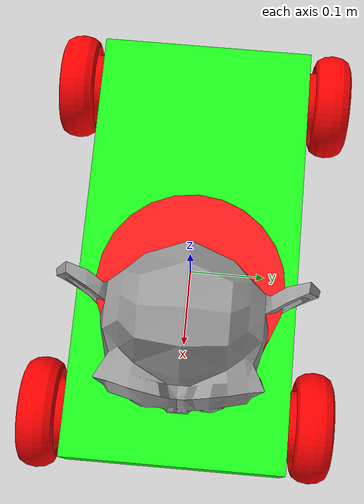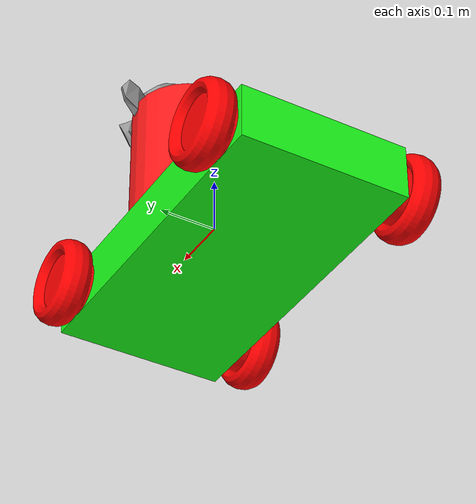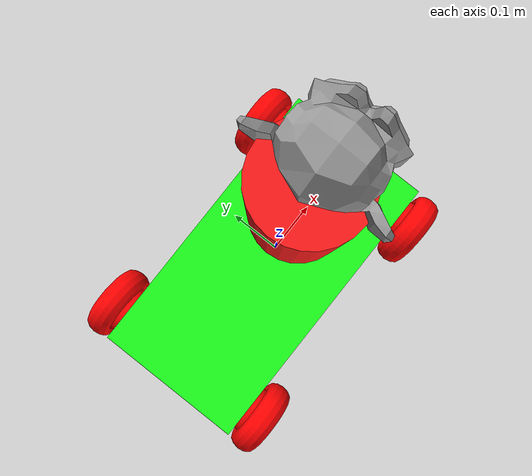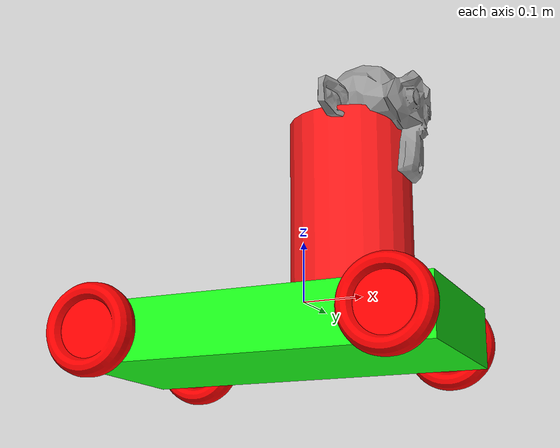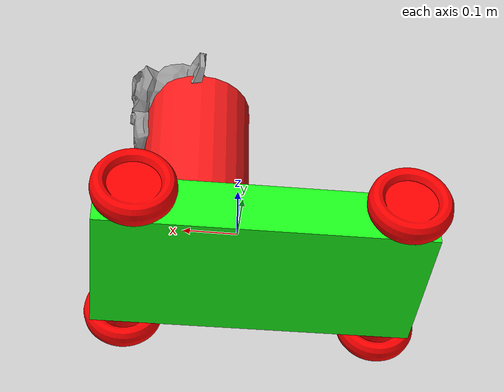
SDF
<?xml version='1.0'?>
<sdf version='1.7'>
  <model name='macaco_robot'>
    <link name='link_3_clone'>
      <inertial>
        <mass>1</mass>
        <inertia>
          <ixx>0.166667</ixx>
          <ixy>0</ixy>
          <ixz>0</ixz>
          <iyy>0.166667</iyy>
          <iyz>0</iyz>
          <izz>0.166667</izz>
        </inertia>
        <pose>0 0 0 0 -0 0</pose>
      </inertial>
      <pose>-0.28315 -0.186738 -0.05589 0 -0 0</pose>
      <gravity>1</gravity>
      <self_collide>0</self_collide>
      <kinematic>0</kinematic>
      <enable_wind>0</enable_wind>
      <visual name='visual'>
        <pose>0 0 0 0 -0 0</pose>
        <geometry>
          <mesh>
            <uri>/home/cristian/Documents/exemplo_gazebo_blender/weels4.dae</uri>
            <scale>1 1 1</scale>
          </mesh>
        </geometry>

        <material>
          <lighting>1</lighting>
          <script>
            <uri>file://media/materials/scripts/gazebo.material</uri>
            <name>Gazebo/Grey</name>
          </script>
          <shader type='pixel'>
            <normal_map>__default__</normal_map>
          </shader>
          <emissive>0 0 0 1</emissive>
          <ambient>1 0 0 0</ambient>
          <diffuse>0.7 0.7 0.7 1</diffuse>
          <specular>0.01 0.01 0.01 1</specular>
        </material>

        <transparency>0</transparency>
        <cast_shadows>1</cast_shadows>
      </visual>

      <collision name='collision'>
        <laser_retro>0</laser_retro>
        <max_contacts>10</max_contacts>
        <pose>0 0 0 0 -0 0</pose>
        <geometry>
          <mesh>
            <uri>/home/cristian/Documents/exemplo_gazebo_blender/weels4.dae</uri>
            <scale>1 1 1</scale>
          </mesh>
        </geometry>
        <surface>
          <friction>
            <ode>
              <mu>1</mu>
              <mu2>1</mu2>
              <fdir1>0 0 0</fdir1>
              <slip1>0</slip1>
              <slip2>0</slip2>
            </ode>
            <torsional>
              <coefficient>1</coefficient>
              <patch_radius>0</patch_radius>
              <surface_radius>0</surface_radius>
              <use_patch_radius>1</use_patch_radius>
              <ode>
                <slip>0</slip>
              </ode>
            </torsional>
          </friction>
          <bounce>
            <restitution_coefficient>0</restitution_coefficient>
            <threshold>1e+06</threshold>
          </bounce>
          <contact>
            <collide_without_contact>0</collide_without_contact>
            <collide_without_contact_bitmask>1</collide_without_contact_bitmask>
            <collide_bitmask>1</collide_bitmask>
            <ode>
              <soft_cfm>0</soft_cfm>
              <soft_erp>0.2</soft_erp>
              <kp>1e+13</kp>
              <kd>1</kd>
              <max_vel>0.01</max_vel>
              <min_depth>0</min_depth>
            </ode>
            <bullet>
              <split_impulse>1</split_impulse>
              <split_impulse_penetration_threshold>-0.01</split_impulse_penetration_threshold>
              <soft_cfm>0</soft_cfm>
              <soft_erp>0.2</soft_erp>
              <kp>1e+13</kp>
              <kd>1</kd>
            </bullet>
          </contact>
        </surface>
      </collision>
    </link>
    <link name='link_3_clone_clone'>
      <inertial>
        <mass>1</mass>
        <inertia>
          <ixx>0.166667</ixx>
          <ixy>0</ixy>
          <ixz>0</ixz>
          <iyy>0.166667</iyy>
          <iyz>0</iyz>
          <izz>0.166667</izz>
        </inertia>
        <pose>0 0 0 0 -0 0</pose>
      </inertial>
      <pose>0.20042 -0.186738 -0.05589 0 -0 0</pose>
      <gravity>1</gravity>
      <self_collide>0</self_collide>
      <kinematic>0</kinematic>
      <enable_wind>0</enable_wind>
      <visual name='visual'>
        <pose>0 0 0 0 -0 0</pose>
        <geometry>
          <mesh>
            <uri>/home/cristian/Documents/exemplo_gazebo_blender/weels4.dae</uri>
            <scale>1 1 1</scale>
          </mesh>
        </geometry>
        <material>
          <lighting>1</lighting>
          <script>
            <uri>file://media/materials/scripts/gazebo.material</uri>
            <name>Gazebo/Grey</name>
          </script>
          <shader type='pixel'>
            <normal_map>__default__</normal_map>
          </shader>
          <emissive>0 0 0 1</emissive>
          <ambient>1 0 0 0</ambient>
          <diffuse>0.7 0.7 0.7 1</diffuse>
          <specular>0.01 0.01 0.01 1</specular>
        </material>
        <transparency>0</transparency>
        <cast_shadows>1</cast_shadows>
      </visual>
      <collision name='collision'>
        <laser_retro>0</laser_retro>
        <max_contacts>10</max_contacts>
        <pose>0 0 0 0 -0 0</pose>
        <geometry>
          <mesh>
            <uri>/home/cristian/Documents/exemplo_gazebo_blender/weels4.dae</uri>
            <scale>1 1 1</scale>
          </mesh>
        </geometry>
        <surface>
          <friction>
            <ode>
              <mu>1</mu>
              <mu2>1</mu2>
              <fdir1>0 0 0</fdir1>
              <slip1>0</slip1>
              <slip2>0</slip2>
            </ode>
            <torsional>
              <coefficient>1</coefficient>
              <patch_radius>0</patch_radius>
              <surface_radius>0</surface_radius>
              <use_patch_radius>1</use_patch_radius>
              <ode>
                <slip>0</slip>
              </ode>
            </torsional>
          </friction>
          <bounce>
            <restitution_coefficient>0</restitution_coefficient>
            <threshold>1e+06</threshold>
          </bounce>
          <contact>
            <collide_without_contact>0</collide_without_contact>
            <collide_without_contact_bitmask>1</collide_without_contact_bitmask>
            <collide_bitmask>1</collide_bitmask>
            <ode>
              <soft_cfm>0</soft_cfm>
              <soft_erp>0.2</soft_erp>
              <kp>1e+13</kp>
              <kd>1</kd>
              <max_vel>0.01</max_vel>
              <min_depth>0</min_depth>
            </ode>
            <bullet>
              <split_impulse>1</split_impulse>
              <split_impulse_penetration_threshold>-0.01</split_impulse_penetration_threshold>
              <soft_cfm>0</soft_cfm>
              <soft_erp>0.2</soft_erp>
              <kp>1e+13</kp>
              <kd>1</kd>
            </bullet>
          </contact>
        </surface>
      </collision>
    </link>
    <link name='link_3_clone_clone_0'>
      <inertial>
        <mass>1</mass>
        <inertia>
          <ixx>0.166667</ixx>
          <ixy>0</ixy>
          <ixz>0</ixz>
          <iyy>0.166667</iyy>
          <iyz>0</iyz>
          <izz>0.166667</izz>
        </inertia>
        <pose>0 0 0 0 -0 0</pose>
      </inertial>
      <pose>-0.281149 0.181791 -0.05589 0 -0 0</pose>
      <gravity>1</gravity>
      <self_collide>0</self_collide>
      <kinematic>0</kinematic>
      <enable_wind>0</enable_wind>
      <visual name='visual'>
        <pose>0 0 0 0 -0 3.1415</pose>
        <geometry>
          <mesh>
            <uri>/home/cristian/Documents/exemplo_gazebo_blender/weels4.dae</uri>
            <scale>1 1 1</scale>
          </mesh>
        </geometry>
        <material>
          <lighting>1</lighting>
          <script>
            <uri>file://media/materials/scripts/gazebo.material</uri>
            <name>Gazebo/Grey</name>
          </script>
          <shader type='pixel'>
            <normal_map>__default__</normal_map>
          </shader>
          <emissive>0 0 0 1</emissive>
          <ambient>1 0 0 1</ambient>
          <diffuse>0.7 0.7 0.7 1</diffuse>
          <specular>0.01 0.01 0.01 1</specular>
        </material>
        <transparency>0</transparency>
        <cast_shadows>1</cast_shadows>
      </visual>
      <collision name='collision'>
        <laser_retro>0</laser_retro>
        <max_contacts>10</max_contacts>
        <pose>0 0 0 0 -0 3.1415</pose>
        <geometry>
          <mesh>
            <uri>/home/cristian/Documents/exemplo_gazebo_blender/weels4.dae</uri>
            <scale>1 1 1</scale>
          </mesh>
        </geometry>
        <surface>
          <friction>
            <ode>
              <mu>1</mu>
              <mu2>1</mu2>
              <fdir1>0 0 0</fdir1>
              <slip1>0</slip1>
              <slip2>0</slip2>
            </ode>
            <torsional>
              <coefficient>1</coefficient>
              <patch_radius>0</patch_radius>
              <surface_radius>0</surface_radius>
              <use_patch_radius>1</use_patch_radius>
              <ode>
                <slip>0</slip>
              </ode>
            </torsional>
          </friction>
          <bounce>
            <restitution_coefficient>0</restitution_coefficient>
            <threshold>1e+06</threshold>
          </bounce>
          <contact>
            <collide_without_contact>0</collide_without_contact>
            <collide_without_contact_bitmask>1</collide_without_contact_bitmask>
            <collide_bitmask>1</collide_bitmask>
            <ode>
              <soft_cfm>0</soft_cfm>
              <soft_erp>0.2</soft_erp>
              <kp>1e+13</kp>
              <kd>1</kd>
              <max_vel>0.01</max_vel>
              <min_depth>0</min_depth>
            </ode>
            <bullet>
              <split_impulse>1</split_impulse>
              <split_impulse_penetration_threshold>-0.01</split_impulse_penetration_threshold>
              <soft_cfm>0</soft_cfm>
              <soft_erp>0.2</soft_erp>
              <kp>1e+13</kp>
              <kd>1</kd>
            </bullet>
          </contact>
        </surface>
      </collision>
    </link>
    <link name='link_3_clone_clone_clone'>
      <inertial>
        <mass>1</mass>
        <inertia>
          <ixx>0.166667</ixx>
          <ixy>0</ixy>
          <ixz>0</ixz>
          <iyy>0.166667</iyy>
          <iyz>0</iyz>
          <izz>0.166667</izz>
        </inertia>
        <pose>0 0 0 0 -0 0</pose>
      </inertial>
      <pose>0.19165 0.181791 -0.05589 0 -0 0</pose>
      <gravity>1</gravity>
      <self_collide>0</self_collide>
      <kinematic>0</kinematic>
      <enable_wind>0</enable_wind>
      <visual name='visual'>
        <pose>0 0 0 0 -0 3.1415</pose>
        <geometry>
          <mesh>
            <uri>/home/cristian/Documents/exemplo_gazebo_blender/weels4.dae</uri>
            <scale>1 1 1</scale>
          </mesh>
        </geometry>
        <material>
          <lighting>1</lighting>
          <script>
            <uri>file://media/materials/scripts/gazebo.material</uri>
            <name>Gazebo/Grey</name>
          </script>
          <shader type='pixel'>
            <normal_map>__default__</normal_map>
          </shader>
          <emissive>0 0 0 1</emissive>
          <ambient>1 0 0 1</ambient>
          <diffuse>0.7 0.7 0.7 1</diffuse>
          <specular>0.01 0.01 0.01 1</specular>
        </material>
        <transparency>0</transparency>
        <cast_shadows>1</cast_shadows>
      </visual>
      <collision name='collision'>
        <laser_retro>0</laser_retro>
        <max_contacts>10</max_contacts>
        <pose>0 0 0 0 -0 3.1415</pose>
        <geometry>
          <mesh>
            <uri>/home/cristian/Documents/exemplo_gazebo_blender/weels4.dae</uri>
            <scale>1 1 1</scale>
          </mesh>
        </geometry>
        <surface>
          <friction>
            <ode>
              <mu>1</mu>
              <mu2>1</mu2>
              <fdir1>0 0 0</fdir1>
              <slip1>0</slip1>
              <slip2>0</slip2>
            </ode>
            <torsional>
              <coefficient>1</coefficient>
              <patch_radius>0</patch_radius>
              <surface_radius>0</surface_radius>
              <use_patch_radius>1</use_patch_radius>
              <ode>
                <slip>0</slip>
              </ode>
            </torsional>
          </friction>
          <bounce>
            <restitution_coefficient>0</restitution_coefficient>
            <threshold>1e+06</threshold>
          </bounce>
          <contact>
            <collide_without_contact>0</collide_without_contact>
            <collide_without_contact_bitmask>1</collide_without_contact_bitmask>
            <collide_bitmask>1</collide_bitmask>
            <ode>
              <soft_cfm>0</soft_cfm>
              <soft_erp>0.2</soft_erp>
              <kp>1e+13</kp>
              <kd>1</kd>
              <max_vel>0.01</max_vel>
              <min_depth>0</min_depth>
            </ode>
            <bullet>
              <split_impulse>1</split_impulse>
              <split_impulse_penetration_threshold>-0.01</split_impulse_penetration_threshold>
              <soft_cfm>0</soft_cfm>
              <soft_erp>0.2</soft_erp>
              <kp>1e+13</kp>
              <kd>1</kd>
            </bullet>
          </contact>
        </surface>
      </collision>
    </link>
    <link name='link_5'>
      <inertial>
        <mass>1</mass>
        <inertia>
          <ixx>0.166667</ixx>
          <ixy>0</ixy>
          <ixz>0</ixz>
          <iyy>0.166667</iyy>
          <iyz>0</iyz>
          <izz>0.166667</izz>
        </inertia>
        <pose>0 0 0 0 -0 0</pose>
      </inertial>
      <pose>-0.03922 -0.002477 -0.103963 0 -0 0</pose>
      <gravity>1</gravity>
      <self_collide>0</self_collide>
      <kinematic>0</kinematic>
      <enable_wind>0</enable_wind>
      <visual name='visual'>
        <pose>0 0 0.05 0 -0 0</pose>
        <geometry>
          <box>
            <size>0.6 0.3 0.1</size>
          </box>
        </geometry>
        <material>
          <lighting>1</lighting>
          <script>
            <uri>file://media/materials/scripts/gazebo.material</uri>
            <name>Gazebo/Grey</name>
          </script>
          <shader type='pixel'>
            <normal_map>__default__</normal_map>
          </shader>
          <ambient>0.1 1 0.1 1</ambient>
          <diffuse>0.7 0.7 0.7 1</diffuse>
          <specular>0.01 0.01 0.01 1</specular>
          <emissive>0 0 0 1</emissive>
        </material>
        <transparency>0</transparency>
        <cast_shadows>1</cast_shadows>
      </visual>
      <collision name='collision'>
        <laser_retro>0</laser_retro>
        <max_contacts>10</max_contacts>
        <pose>0 0 0.05 0 -0 0</pose>
        <geometry>
          <box>
            <size>0.6 0.3 0.1</size>
          </box>
        </geometry>
        <surface>
          <friction>
            <ode>
              <mu>1</mu>
              <mu2>1</mu2>
              <fdir1>0 0 0</fdir1>
              <slip1>0</slip1>
              <slip2>0</slip2>
            </ode>
            <torsional>
              <coefficient>1</coefficient>
              <patch_radius>0</patch_radius>
              <surface_radius>0</surface_radius>
              <use_patch_radius>1</use_patch_radius>
              <ode>
                <slip>0</slip>
              </ode>
            </torsional>
          </friction>
          <bounce>
            <restitution_coefficient>0</restitution_coefficient>
            <threshold>1e+06</threshold>
          </bounce>
          <contact>
            <collide_without_contact>0</collide_without_contact>
            <collide_without_contact_bitmask>1</collide_without_contact_bitmask>
            <collide_bitmask>1</collide_bitmask>
            <ode>
              <soft_cfm>0</soft_cfm>
              <soft_erp>0.2</soft_erp>
              <kp>1e+13</kp>
              <kd>1</kd>
              <max_vel>0.01</max_vel>
              <min_depth>0</min_depth>
            </ode>
            <bullet>
              <split_impulse>1</split_impulse>
              <split_impulse_penetration_threshold>-0.01</split_impulse_penetration_threshold>
              <soft_cfm>0</soft_cfm>
              <soft_erp>0.2</soft_erp>
              <kp>1e+13</kp>
              <kd>1</kd>
            </bullet>
          </contact>
        </surface>
      </collision>
    </link>
    <link name='link_6'>
      <inertial>
        <mass>1</mass>
        <inertia>
          <ixx>0.145833</ixx>
          <ixy>0</ixy>
          <ixz>0</ixz>
          <iyy>0.145833</iyy>
          <iyz>0</iyz>
          <izz>0.125</izz>
        </inertia>
        <pose>0 0 0 0 -0 0</pose>
      </inertial>
      <pose>0.08126 0.007551 0.043037 0 -0 0</pose>
      <gravity>1</gravity>
      <self_collide>0</self_collide>
      <kinematic>0</kinematic>
      <enable_wind>0</enable_wind>
      <visual name='visual'>
        <pose>0 0 0.1 0 -0 0</pose>
        <geometry>
          <cylinder>
            <radius>0.1</radius>
            <length>0.3</length>
          </cylinder>
        </geometry>
        <material>
          <lighting>1</lighting>
          <script>
            <uri>file://media/materials/scripts/gazebo.material</uri>
            <name>Gazebo/Grey</name>
          </script>
          <shader type='pixel'>
            <normal_map>__default__</normal_map>
          </shader>
          <ambient>1 0.1 0.1 1</ambient>
          <diffuse>0.7 0.7 0.7 1</diffuse>
          <specular>0.01 0.01 0.01 1</specular>
          <emissive>0 0 0 1</emissive>
        </material>
        <transparency>0</transparency>
        <cast_shadows>1</cast_shadows>
      </visual>
      <collision name='collision'>
        <laser_retro>0</laser_retro>
        <max_contacts>10</max_contacts>
        <pose>0 0 0.1 0 -0 0</pose>
        <geometry>
          <cylinder>
            <radius>0.1</radius>
            <length>0.3</length>
          </cylinder>
        </geometry>
        <surface>
          <friction>
            <ode>
              <mu>1</mu>
              <mu2>1</mu2>
              <fdir1>0 0 0</fdir1>
              <slip1>0</slip1>
              <slip2>0</slip2>
            </ode>
            <torsional>
              <coefficient>1</coefficient>
              <patch_radius>0</patch_radius>
              <surface_radius>0</surface_radius>
              <use_patch_radius>1</use_patch_radius>
              <ode>
                <slip>0</slip>
              </ode>
            </torsional>
          </friction>
          <bounce>
            <restitution_coefficient>0</restitution_coefficient>
            <threshold>1e+06</threshold>
          </bounce>
          <contact>
            <collide_without_contact>0</collide_without_contact>
            <collide_without_contact_bitmask>1</collide_without_contact_bitmask>
            <collide_bitmask>1</collide_bitmask>
            <ode>
              <soft_cfm>0</soft_cfm>
              <soft_erp>0.2</soft_erp>
              <kp>1e+13</kp>
              <kd>1</kd>
              <max_vel>0.01</max_vel>
              <min_depth>0</min_depth>
            </ode>
            <bullet>
              <split_impulse>1</split_impulse>
              <split_impulse_penetration_threshold>-0.01</split_impulse_penetration_threshold>
              <soft_cfm>0</soft_cfm>
              <soft_erp>0.2</soft_erp>
              <kp>1e+13</kp>
              <kd>1</kd>
            </bullet>
          </contact>
        </surface>
      </collision>
    </link>
    <link name='link_7'>
      <inertial>
        <mass>1</mass>
        <inertia>
          <ixx>0.166667</ixx>
          <ixy>0</ixy>
          <ixz>0</ixz>
          <iyy>0.166667</iyy>
          <iyz>0</iyz>
          <izz>0.166667</izz>
        </inertia>
        <pose>0 0 0 0 -0 0</pose>
      </inertial>
      <pose>0.13019 0.004819 0.284485 0 -0 0</pose>
      <gravity>1</gravity>
      <self_collide>0</self_collide>
      <kinematic>0</kinematic>
      <enable_wind>0</enable_wind>
      <visual name='visual'>
        <pose>0 0 0 0 -0 1.5707</pose>
        <geometry>
          <mesh>
            <uri>/home/cristian/Documents/exemplo_gazebo_blender/monkey.dae</uri>
            <scale>1 1 1</scale>
          </mesh>
        </geometry>
        <material>
          <lighting>1</lighting>
          <script>
            <uri>file://media/materials/scripts/gazebo.material</uri>
            <name>Gazebo/Grey</name>
          </script>
          <shader type='pixel'>
            <normal_map>__default__</normal_map>
          </shader>
          <ambient>0.05 0.05 0.05 1</ambient>
          <diffuse>0.7 0.7 0.7 1</diffuse>
          <specular>0.01 0.01 0.01 1</specular>
          <emissive>0 0 0 1</emissive>
        </material>
        <transparency>0</transparency>
        <cast_shadows>1</cast_shadows>
      </visual>
      <collision name='collision'>
        <laser_retro>0</laser_retro>
        <max_contacts>10</max_contacts>
        <pose>0 0 0 0 -0 1.5707</pose>
        <geometry>
          <mesh>
            <uri>/home/cristian/Documents/exemplo_gazebo_blender/monkey.dae</uri>
            <scale>1 1 1</scale>
          </mesh>
        </geometry>
        <surface>
          <friction>
            <ode>
              <mu>1</mu>
              <mu2>1</mu2>
              <fdir1>0 0 0</fdir1>
              <slip1>0</slip1>
              <slip2>0</slip2>
            </ode>
            <torsional>
              <coefficient>1</coefficient>
              <patch_radius>0</patch_radius>
              <surface_radius>0</surface_radius>
              <use_patch_radius>1</use_patch_radius>
              <ode>
                <slip>0</slip>
              </ode>
            </torsional>
          </friction>
          <bounce>
            <restitution_coefficient>0</restitution_coefficient>
            <threshold>1e+06</threshold>
          </bounce>
          <contact>
            <collide_without_contact>0</collide_without_contact>
            <collide_without_contact_bitmask>1</collide_without_contact_bitmask>
            <collide_bitmask>1</collide_bitmask>
            <ode>
              <soft_cfm>0</soft_cfm>
              <soft_erp>0.2</soft_erp>
              <kp>1e+13</kp>
              <kd>1</kd>
              <max_vel>0.01</max_vel>
              <min_depth>0</min_depth>
            </ode>
            <bullet>
              <split_impulse>1</split_impulse>
              <split_impulse_penetration_threshold>-0.01</split_impulse_penetration_threshold>
              <soft_cfm>0</soft_cfm>
              <soft_erp>0.2</soft_erp>
              <kp>1e+13</kp>
              <kd>1</kd>
            </bullet>
          </contact>
        </surface>
      </collision>
    </link>
    <joint name='link_5_JOINT_1' type='revolute'>
      <parent>link_5</parent>
      <child>link_3_clone</child>
      <pose>0 0 0 0 -0 0</pose>
      <axis>
        <xyz>0 1 0</xyz>
        <limit>
          <lower>-1.79769e+308</lower>
          <upper>1.79769e+308</upper>
          <effort>-1</effort>
          <velocity>-1</velocity>
        </limit>
        <dynamics>
          <spring_reference>0</spring_reference>
          <spring_stiffness>0</spring_stiffness>
          <damping>0</damping>
          <friction>0</friction>
        </dynamics>
      </axis>
      <physics>
        <ode>
          <limit>
            <cfm>0</cfm>
            <erp>0.2</erp>
          </limit>
          <suspension>
            <cfm>0</cfm>
            <erp>0.2</erp>
          </suspension>
        </ode>
      </physics>
    </joint>
    <joint name='link_5_JOINT_2' type='revolute'>
      <parent>link_5</parent>
      <child>link_3_clone_clone</child>
      <pose>0 0 0 -0.01 0 0</pose>
      <axis>
        <xyz>0 1 0</xyz>
        <limit>
          <lower>-1.79769e+308</lower>
          <upper>1.79769e+308</upper>
          <effort>-1</effort>
          <velocity>-1</velocity>
        </limit>
        <dynamics>
          <spring_reference>0</spring_reference>
          <spring_stiffness>0</spring_stiffness>
          <damping>0</damping>
          <friction>0</friction>
        </dynamics>
      </axis>
      <physics>
        <ode>
          <limit>
            <cfm>0</cfm>
            <erp>0.2</erp>
          </limit>
          <suspension>
            <cfm>0</cfm>
            <erp>0.2</erp>
          </suspension>
        </ode>
      </physics>
    </joint>
    <joint name='link_5_JOINT_3' type='revolute'>
      <parent>link_5</parent>
      <child>link_3_clone_clone_0</child>
      <pose>0 0 0 0 -0 0</pose>
      <axis>
        <xyz>0 1 0</xyz>
        <limit>
          <lower>-1.79769e+308</lower>
          <upper>1.79769e+308</upper>
          <effort>-1</effort>
          <velocity>-1</velocity>
        </limit>
        <dynamics>
          <spring_reference>0</spring_reference>
          <spring_stiffness>0</spring_stiffness>
          <damping>0</damping>
        </dynamics>
      </axis>
      <physics>
        <ode>
          <limit>
            <cfm>0</cfm>
            <erp>0.2</erp>
          </limit>
          <suspension>
            <cfm>0</cfm>
            <erp>0.2</erp>
          </suspension>
        </ode>
      </physics>
    </joint>
    <joint name='link_5_JOINT_4' type='revolute'>
      <parent>link_5</parent>
      <child>link_3_clone_clone_clone</child>
      <pose>0 0 0 0 -0 0</pose>
      <axis>
        <xyz>0 1 0</xyz>
        <limit>
          <lower>-1.79769e+308</lower>
          <upper>1.79769e+308</upper>
          <effort>-1</effort>
          <velocity>-1</velocity>
        </limit>
        <dynamics>
          <spring_reference>0</spring_reference>
          <spring_stiffness>0</spring_stiffness>
          <damping>0</damping>
        </dynamics>
      </axis>
      <physics>
        <ode>
          <limit>
            <cfm>0</cfm>
            <erp>0.2</erp>
          </limit>
          <suspension>
            <cfm>0</cfm>
            <erp>0.2</erp>
          </suspension>
        </ode>
      </physics>
    </joint>
    <joint name='link_5_JOINT_6' type='fixed'>
      <parent>link_5</parent>
      <child>link_6</child>
      <pose>0 0 0 0 -0 0</pose>
      <physics>
        <ode>
          <limit>
            <cfm>0</cfm>
            <erp>0.2</erp>
          </limit>
          <suspension>
            <cfm>0</cfm>
            <erp>0.2</erp>
          </suspension>
        </ode>
      </physics>
    </joint>
    <joint name='link_6_JOINT_8' type='fixed'>
      <parent>link_6</parent>
      <child>link_7</child>
      <pose>0 0 0 0 -0 0</pose>
      <physics>
        <ode>
          <limit>
            <cfm>0</cfm>
            <erp>0.2</erp>
          </limit>
          <suspension>
            <cfm>0</cfm>
            <erp>0.2</erp>
          </suspension>
        </ode>
      </physics>
    </joint>
    <static>0</static>
    <allow_auto_disable>1</allow_auto_disable>
  </model>
</sdf>
